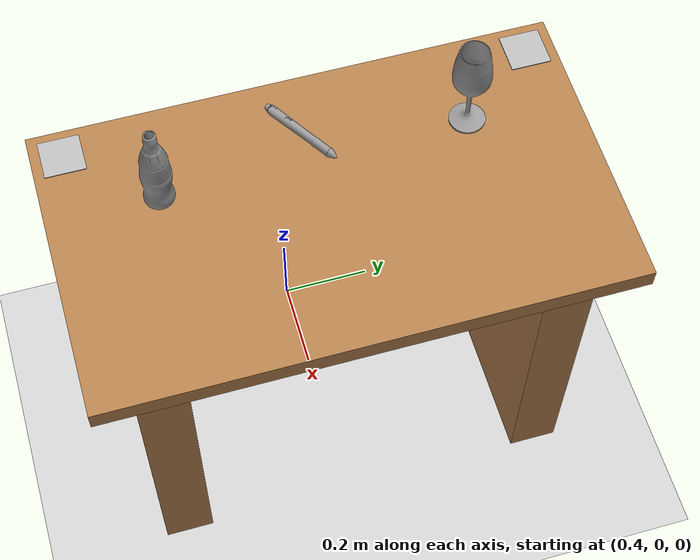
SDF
<sdf version="1.6">
 <world name="default">
  <light name="sun" type="directional">
   <pose>0 0 10 0 -0 0</pose>
   <diffuse>0.8 0.8 0.8 1</diffuse>
   <specular>0.2 0.2 0.2 1</specular>
   <attenuation>
    <range>1000</range>
    <constant>0.9</constant>
    <linear>0.01</linear>
    <quadratic>0.001</quadratic>
   </attenuation>
   <direction>-0.5 0.1 -0.9</direction>
  </light>
  <physics name="dart_2ms" default="0" type="dart">
   <max_step_size>0.002</max_step_size>
   <real_time_factor>1</real_time_factor>
   <real_time_update_rate>500</real_time_update_rate>
   <dart><solver><solver_type>pgs</solver_type></solver></dart>
  </physics>
  <model name="ground_plane">
   <static>1</static>
   <link name="link">
    <collision name="collision">
     <geometry><plane><normal>0 0 1</normal><size>100 100</size></plane></geometry>
     <surface>
      <contact><collide_bitmask>65535</collide_bitmask></contact>
      <friction><ode><mu>100</mu><mu2>50</mu2></ode></friction>
     </surface>
    </collision>
    <visual name="visual">
     <cast_shadows>0</cast_shadows>
     <geometry><plane><normal>0 0 1</normal><size>100 100</size></plane></geometry>
     <material>
      <script><uri>file://media/materials/scripts/gazebo.material</uri><name>Gazebo/Grey</name></script>
     </material>
    </visual>
   </link>
  </model>
  <gravity>0 0 -9.8</gravity>
  <magnetic_field>6e-06 2.3e-05 -4.2e-05</magnetic_field>
  <atmosphere type="adiabatic"/>
  <scene><ambient>0.4 0.4 0.4 1</ambient><background>0.7 0.7 0.7 1</background><shadows>1</shadows></scene>
  <audio><device>default</device></audio>
  <spherical_coordinates>
   <surface_model>EARTH_WGS84</surface_model>
   <latitude_deg>0</latitude_deg>
   <longitude_deg>0</longitude_deg>
   <elevation>0</elevation>
   <heading_deg>0</heading_deg>
  </spherical_coordinates>
  <model name="table_b_1">
   <static>1</static>
   <link name="link">
    <visual name="surface">
     <pose>0 0 0.73 0 -0 0</pose>
     <geometry><box><size>1.04 0.6 0.04</size></box></geometry>
     <material>
      <script><uri>file://media/materials/scripts/gazebo.material</uri><name>Gazebo/Wood</name></script>
     </material>
    </visual>
    <visual name="leg_left">
     <pose>0.39 0 0.355 0 -0 0</pose>
     <geometry><box><size>0.1 0.5 0.71</size></box></geometry>
     <material>
      <script><uri>file://media/materials/scripts/gazebo.material</uri><name>Gazebo/Wood</name></script>
     </material>
    </visual>
    <visual name="leg_right">
     <pose>-0.39 0 0.355 0 -0 0</pose>
     <geometry><box><size>0.1 0.5 0.71</size></box></geometry>
     <material>
      <script><uri>file://media/materials/scripts/gazebo.material</uri><name>Gazebo/Wood</name></script>
     </material>
    </visual>
    <collision name="surface">
     <pose>0 0 0.73 0 -0 0</pose>
     <geometry><box><size>1.04 0.6 0.04</size></box></geometry>
    </collision>
    <collision name="leg_left">
     <pose>0.39 0 0.355 0 -0 0</pose>
     <geometry><box><size>0.1 0.5 0.71</size></box></geometry>
    </collision>
    <collision name="leg_right">
     <pose>-0.39 0 0.355 0 -0 0</pose>
     <geometry><box><size>0.1 0.5 0.71</size></box></geometry>
    </collision>
    <visual name="marker_8">
     <pose>0.46 0.24 0.755 0 -0 0</pose>
     <geometry><mesh><uri>model://ar_marker_8cm_8/meshes/ar_marker_8cm.dae</uri></mesh></geometry>
    </visual>
    <visual name="marker_9">
     <pose>-0.46 0.24 0.755 0 -0 0</pose>
     <geometry><mesh><uri>model://ar_marker_8cm_9/meshes/ar_marker_8cm.dae</uri></mesh></geometry>
    </visual>
   </link>
   <pose>0.744485 0.018586 0.142925 0 -0 1.57098</pose>
  </model>
  <model name="GlassWine">
   <link name="link_3">
    <inertial>
     <mass>0.05</mass>
     <inertia>
      <ixx>2.083e-05</ixx>
      <ixy>0</ixy>
      <ixz>0</ixz>
      <iyy>2.083e-05</iyy>
      <iyz>0</iyz>
      <izz>4.083e-05</izz>
     </inertia>
    </inertial>
    <visual name="visual">
     <geometry><mesh><uri>model://GlassWine/GlassWine.dae</uri><scale>1 1 1</scale></mesh></geometry>
     <material>
      <lighting>1</lighting>
      <script><uri>file://media/materials/scripts/gazebo.material</uri><name>Gazebo/Grey</name></script>
      <shader type="pixel"><normal_map>__default__</normal_map></shader>
      <ambient>0.3 0.3 0.3 1</ambient>
      <diffuse>0.7 0.7 0.7 1</diffuse>
      <specular>0.01 0.01 0.01 1</specular>
      <emissive>0 0 0 1</emissive>
     </material>
    </visual>
    <collision name="collision_3">
     <pose>0 0 0.125 0 -0 0</pose>
     <geometry><sphere><radius>0.038</radius></sphere></geometry>
     <surface>
      <friction>
       <ode><mu>1</mu><mu2>1</mu2><fdir1>0 0 0</fdir1><slip1>0</slip1><slip2>0</slip2></ode>
       <torsional>
        <coefficient>1</coefficient>
        <patch_radius>0</patch_radius>
        <surface_radius>0</surface_radius>
        <use_patch_radius>1</use_patch_radius>
        <ode><slip>0</slip></ode>
       </torsional>
      </friction>
      <bounce><restitution_coefficient>0</restitution_coefficient><threshold>1e+06</threshold></bounce>
      <contact>
       <collide_without_contact>0</collide_without_contact>
       <collide_without_contact_bitmask>1</collide_without_contact_bitmask>
       <collide_bitmask>1</collide_bitmask>
       <ode>
        <soft_cfm>0</soft_cfm>
        <soft_erp>0.2</soft_erp>
        <kp>1e+13</kp>
        <kd>1</kd>
        <max_vel>0.01</max_vel>
        <min_depth>0</min_depth>
       </ode>
       <bullet>
        <split_impulse>1</split_impulse>
        <split_impulse_penetration_threshold>-0.01</split_impulse_penetration_threshold>
        <soft_cfm>0</soft_cfm>
        <soft_erp>0.2</soft_erp>
        <kp>1e+13</kp>
        <kd>1</kd>
       </bullet>
      </contact>
     </surface>
    </collision>
    <collision name="collision_1">
     <geometry><box><size>0.07 0.07 0.01</size></box></geometry>
     <surface>
      <friction>
       <ode><mu>1</mu><mu2>1</mu2><fdir1>0 0 0</fdir1><slip1>0</slip1><slip2>0</slip2></ode>
       <torsional>
        <coefficient>1</coefficient>
        <patch_radius>0</patch_radius>
        <surface_radius>0</surface_radius>
        <use_patch_radius>1</use_patch_radius>
        <ode><slip>0</slip></ode>
       </torsional>
      </friction>
      <bounce><restitution_coefficient>0</restitution_coefficient><threshold>1e+06</threshold></bounce>
      <contact>
       <collide_without_contact>0</collide_without_contact>
       <collide_without_contact_bitmask>1</collide_without_contact_bitmask>
       <collide_bitmask>1</collide_bitmask>
       <ode>
        <soft_cfm>0</soft_cfm>
        <soft_erp>0.2</soft_erp>
        <kp>1e+13</kp>
        <kd>1</kd>
        <max_vel>0.01</max_vel>
        <min_depth>0</min_depth>
       </ode>
       <bullet>
        <split_impulse>1</split_impulse>
        <split_impulse_penetration_threshold>-0.01</split_impulse_penetration_threshold>
        <soft_cfm>0</soft_cfm>
        <soft_erp>0.2</soft_erp>
        <kp>1e+13</kp>
        <kd>1</kd>
       </bullet>
      </contact>
     </surface>
    </collision>
    <collision name="collision_2">
     <pose>0 0 0.05 0 -0 0</pose>
     <geometry><box><size>0.01 0.01 0.1</size></box></geometry>
     <surface>
      <friction>
       <ode><mu>1</mu><mu2>1</mu2><fdir1>0 0 0</fdir1><slip1>0</slip1><slip2>0</slip2></ode>
       <torsional>
        <coefficient>1</coefficient>
        <patch_radius>0</patch_radius>
        <surface_radius>0</surface_radius>
        <use_patch_radius>1</use_patch_radius>
        <ode><slip>0</slip></ode>
       </torsional>
      </friction>
      <bounce><restitution_coefficient>0</restitution_coefficient><threshold>1e+06</threshold></bounce>
      <contact>
       <collide_without_contact>0</collide_without_contact>
       <collide_without_contact_bitmask>1</collide_without_contact_bitmask>
       <collide_bitmask>1</collide_bitmask>
       <ode>
        <soft_cfm>0</soft_cfm>
        <soft_erp>0.2</soft_erp>
        <kp>1e+13</kp>
        <kd>1</kd>
        <max_vel>0.01</max_vel>
        <min_depth>0</min_depth>
       </ode>
       <bullet>
        <split_impulse>1</split_impulse>
        <split_impulse_penetration_threshold>-0.01</split_impulse_penetration_threshold>
        <soft_cfm>0</soft_cfm>
        <soft_erp>0.2</soft_erp>
        <kp>1e+13</kp>
        <kd>1</kd>
       </bullet>
      </contact>
     </surface>
    </collision>
    <collision name="collision_4">
     <pose>0 0 0.17 0 -0 0</pose>
     <geometry><box><size>0.06 0.06 0.07</size></box></geometry>
     <surface>
      <friction>
       <ode><mu>1</mu><mu2>1</mu2><fdir1>0 0 0</fdir1><slip1>0</slip1><slip2>0</slip2></ode>
       <torsional>
        <coefficient>1</coefficient>
        <patch_radius>0</patch_radius>
        <surface_radius>0</surface_radius>
        <use_patch_radius>1</use_patch_radius>
        <ode><slip>0</slip></ode>
       </torsional>
      </friction>
      <bounce><restitution_coefficient>0</restitution_coefficient><threshold>1e+06</threshold></bounce>
      <contact>
       <collide_without_contact>0</collide_without_contact>
       <collide_without_contact_bitmask>1</collide_without_contact_bitmask>
       <collide_bitmask>1</collide_bitmask>
       <ode>
        <soft_cfm>0</soft_cfm>
        <soft_erp>0.2</soft_erp>
        <kp>1e+13</kp>
        <kd>1</kd>
        <max_vel>0.01</max_vel>
        <min_depth>0</min_depth>
       </ode>
       <bullet>
        <split_impulse>1</split_impulse>
        <split_impulse_penetration_threshold>-0.01</split_impulse_penetration_threshold>
        <soft_cfm>0</soft_cfm>
        <soft_erp>0.2</soft_erp>
        <kp>1e+13</kp>
        <kd>1</kd>
       </bullet>
      </contact>
     </surface>
    </collision>
   </link>
   <static>0</static>
   <pose>0.631147 0.316851 0.897925 0 -0 8e-06</pose>
  </model>
  <model name="Cola">
   <link name="link_2">
    <inertial>
     <mass>0.5</mass>
     <inertia>
      <ixx>0.00145417</ixx>
      <ixy>0</ixy>
      <ixz>0</ixz>
      <iyy>0.00145417</iyy>
      <iyz>0</iyz>
      <izz>0.00020833</izz>
     </inertia>
    </inertial>
    <visual name="visual">
     <geometry><mesh><uri>model://Cola/Cola.dae</uri><scale>1 1 1</scale></mesh></geometry>
     <material>
      <lighting>1</lighting>
      <script><uri>file://media/materials/scripts/gazebo.material</uri><name>Gazebo/Grey</name></script>
      <shader type="pixel"><normal_map>__default__</normal_map></shader>
      <ambient>0.3 0.3 0.3 1</ambient>
      <diffuse>0.7 0.7 0.7 1</diffuse>
      <specular>0.01 0.01 0.01 1</specular>
      <emissive>0 0 0 1</emissive>
     </material>
    </visual>
    <collision name="collision_1">
     <pose>0 0 0.09 0 -0 0</pose>
     <geometry><box><size>0.05 0.05 0.18</size></box></geometry>
     <surface>
      <friction>
       <ode><mu>1</mu><mu2>1</mu2><fdir1>0 0 0</fdir1><slip1>0</slip1><slip2>0</slip2></ode>
       <torsional>
        <coefficient>1</coefficient>
        <patch_radius>0</patch_radius>
        <surface_radius>0</surface_radius>
        <use_patch_radius>1</use_patch_radius>
        <ode><slip>0</slip></ode>
       </torsional>
      </friction>
      <bounce><restitution_coefficient>0</restitution_coefficient><threshold>1e+06</threshold></bounce>
      <contact>
       <collide_without_contact>0</collide_without_contact>
       <collide_without_contact_bitmask>1</collide_without_contact_bitmask>
       <collide_bitmask>1</collide_bitmask>
       <ode>
        <soft_cfm>0</soft_cfm>
        <soft_erp>0.2</soft_erp>
        <kp>1e+13</kp>
        <kd>1</kd>
        <max_vel>0.01</max_vel>
        <min_depth>0</min_depth>
       </ode>
       <bullet>
        <split_impulse>1</split_impulse>
        <split_impulse_penetration_threshold>-0.01</split_impulse_penetration_threshold>
        <soft_cfm>0</soft_cfm>
        <soft_erp>0.2</soft_erp>
        <kp>1e+13</kp>
        <kd>1</kd>
       </bullet>
      </contact>
     </surface>
    </collision>
   </link>
   <static>0</static>
   <pose>0.644335 -0.284569 0.892924 -5.4e-05 -0 -0.007205</pose>
  </model>
  <model name="Pen1">
   <link name="link_1">
    <inertial>
     <mass>0.005</mass>
     <inertia>
      <ixx>3.3e-07</ixx>
      <ixy>0</ixy>
      <ixz>0</ixz>
      <iyy>1.083e-05</iyy>
      <iyz>0</iyz>
      <izz>1.083e-05</izz>
     </inertia>
    </inertial>
    <visual name="visual">
     <geometry><mesh><uri>model://Pen1/Pen1.dae</uri><scale>1 1 1</scale></mesh></geometry>
     <material>
      <lighting>1</lighting>
      <script><uri>file://media/materials/scripts/gazebo.material</uri><name>Gazebo/Grey</name></script>
      <shader type="pixel"><normal_map>__default__</normal_map></shader>
      <ambient>0.3 0.3 0.3 1</ambient>
      <diffuse>0.7 0.7 0.7 1</diffuse>
      <specular>0.01 0.01 0.01 1</specular>
      <emissive>0 0 0 1</emissive>
     </material>
    </visual>
    <collision name="collision_1">
     <geometry><box><size>0.16 0.02 0.02</size></box></geometry>
     <surface>
      <friction>
       <ode><mu>1</mu><mu2>1</mu2><fdir1>0 0 0</fdir1><slip1>0</slip1><slip2>0</slip2></ode>
       <torsional>
        <coefficient>1</coefficient>
        <patch_radius>0</patch_radius>
        <surface_radius>0</surface_radius>
        <use_patch_radius>1</use_patch_radius>
        <ode><slip>0</slip></ode>
       </torsional>
      </friction>
      <bounce><restitution_coefficient>0</restitution_coefficient><threshold>1e+06</threshold></bounce>
      <contact>
       <collide_without_contact>0</collide_without_contact>
       <collide_without_contact_bitmask>1</collide_without_contact_bitmask>
       <collide_bitmask>1</collide_bitmask>
       <ode>
        <soft_cfm>0</soft_cfm>
        <soft_erp>0.2</soft_erp>
        <kp>1e+13</kp>
        <kd>1</kd>
        <max_vel>0.01</max_vel>
        <min_depth>0</min_depth>
       </ode>
       <bullet>
        <split_impulse>1</split_impulse>
        <split_impulse_penetration_threshold>-0.01</split_impulse_penetration_threshold>
        <soft_cfm>0</soft_cfm>
        <soft_erp>0.2</soft_erp>
        <kp>1e+13</kp>
        <kd>1</kd>
       </bullet>
      </contact>
     </surface>
    </collision>
   </link>
   <static>0</static>
   <pose>0.569982 0.000413 0.902925 5e-06 -0 0.566386</pose>
  </model>
 </world>
</sdf>
